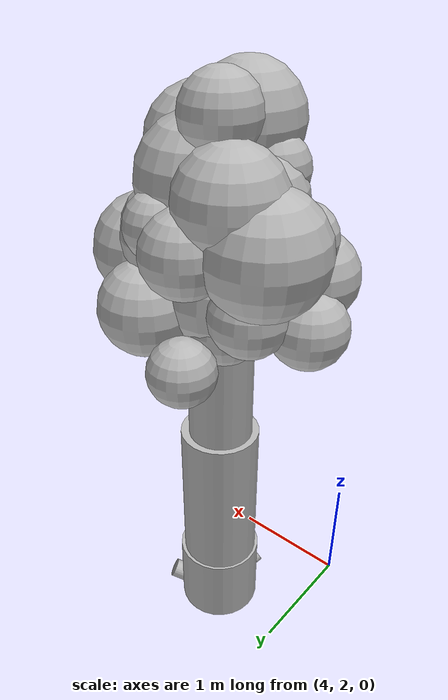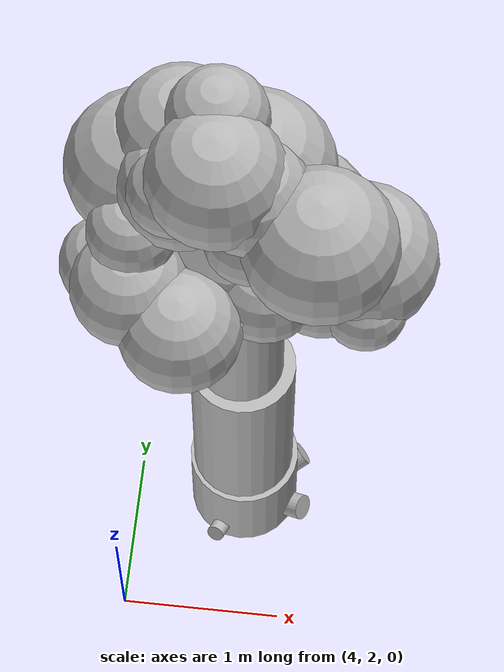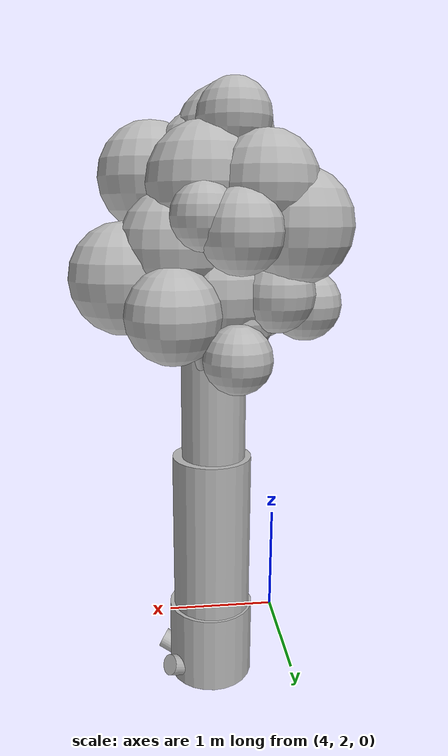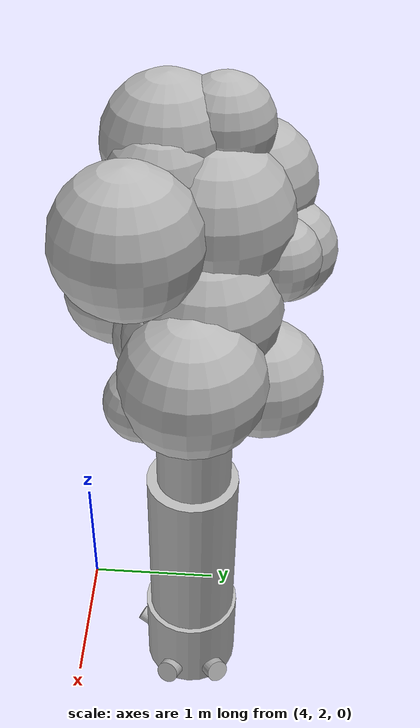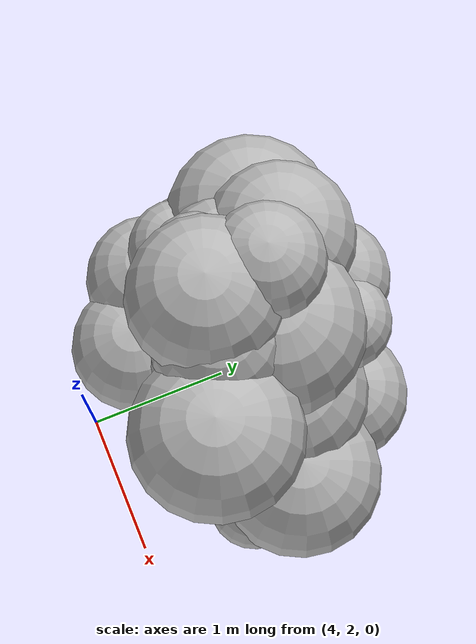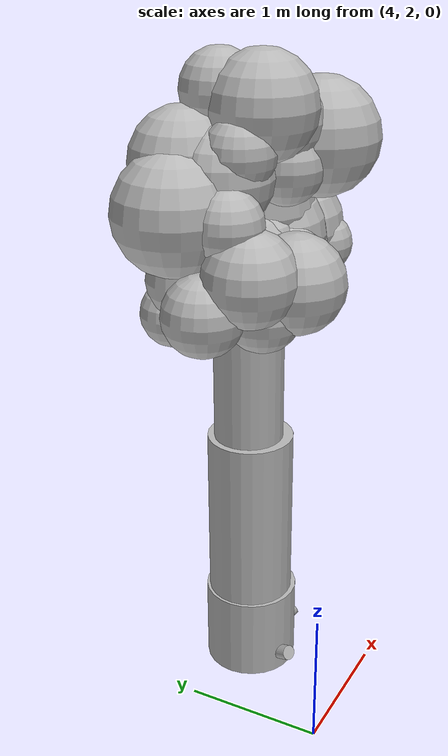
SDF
<sdf version="1.6">
 <world name="default">
  <model name="tree_9">
   <static>true</static>
   <pose>4.6950 2.8680 0 0 0 0</pose>
   <link name="trunk">
    <pose>0 0 1.5000 0 0 0</pose>
    <collision name="trunk_c">
     <geometry><cylinder><radius>0.3500</radius><length>3.0000</length></cylinder></geometry>
    </collision>
   </link>
   <link name="trunk_v0">
    <pose>-0.0012 0.0007 0.3100 0 0 0</pose>
    <visual name="trunk_v0_v">
     <geometry><cylinder><radius>0.3448</radius><length>0.6448</length></cylinder></geometry>
     <material>
      <script>
       <uri>model://bushfire/materials/scripts</uri>
       <uri>model://bushfire/materials/textures</uri>
       <name>Bushfire/CharBark</name>
      </script>
     </material>
    </visual>
   </link>
   <link name="trunk_v1">
    <pose>-0.0084 0.0048 1.2700 0 0 0</pose>
    <visual name="trunk_v1_v">
     <geometry><cylinder><radius>0.3150</radius><length>1.3520</length></cylinder></geometry>
     <material>
      <script>
       <uri>model://bushfire/materials/scripts</uri>
       <uri>model://bushfire/materials/textures</uri>
       <name>Bushfire/BarkStringy</name>
      </script>
     </material>
    </visual>
   </link>
   <link name="trunk_v2">
    <pose>-0.0211 0.0121 2.4600 0 0 0</pose>
    <visual name="trunk_v2_v">
     <geometry><cylinder><radius>0.2520</radius><length>1.1232</length></cylinder></geometry>
     <material>
      <script>
       <uri>model://bushfire/materials/scripts</uri>
       <uri>model://bushfire/materials/textures</uri>
       <name>Bushfire/BarkStringy</name>
      </script>
     </material>
    </visual>
   </link>
   <link name="root0">
    <pose>-0.0834 -0.2250 0.09 0 1.150 4.357</pose>
    <visual name="root0_v">
     <geometry><cylinder><radius>0.0559</radius><length>0.4200</length></cylinder></geometry>
     <material>
      <script>
       <uri>model://bushfire/materials/scripts</uri>
       <uri>model://bushfire/materials/textures</uri>
       <name>Bushfire/CharBark</name>
      </script>
     </material>
    </visual>
   </link>
   <link name="root1">
    <pose>0.2231 -0.0884 0.09 0 1.150 5.906</pose>
    <visual name="root1_v">
     <geometry><cylinder><radius>0.0820</radius><length>0.4200</length></cylinder></geometry>
     <material>
      <script>
       <uri>model://bushfire/materials/scripts</uri>
       <uri>model://bushfire/materials/textures</uri>
       <name>Bushfire/CharBark</name>
      </script>
     </material>
    </visual>
   </link>
   <link name="root2">
    <pose>0.2034 0.1274 0.09 0 1.150 0.560</pose>
    <visual name="root2_v">
     <geometry><cylinder><radius>0.0820</radius><length>0.4200</length></cylinder></geometry>
     <material>
      <script>
       <uri>model://bushfire/materials/scripts</uri>
       <uri>model://bushfire/materials/textures</uri>
       <name>Bushfire/CharBark</name>
      </script>
     </material>
    </visual>
   </link>
   <link name="branch0">
    <pose>-0.1534 0.1899 3.2244 0 0.5458 2.2503</pose>
    <visual name="branch0_v">
     <geometry><cylinder><radius>0.0531</radius><length>0.9404</length></cylinder></geometry>
     <material>
      <script>
       <uri>model://bushfire/materials/scripts</uri>
       <uri>model://bushfire/materials/textures</uri>
       <name>Bushfire/BarkStringy</name>
      </script>
     </material>
    </visual>
   </link>
   <link name="branch1">
    <pose>-0.1738 -0.0894 3.0199 0 0.7760 3.6165</pose>
    <visual name="branch1_v">
     <geometry><cylinder><radius>0.0448</radius><length>0.5581</length></cylinder></geometry>
     <material>
      <script>
       <uri>model://bushfire/materials/scripts</uri>
       <uri>model://bushfire/materials/textures</uri>
       <name>Bushfire/BarkStringy</name>
      </script>
     </material>
    </visual>
   </link>
   <link name="branch2">
    <pose>0.0083 -0.2091 3.0139 0 0.5542 4.7521</pose>
    <visual name="branch2_v">
     <geometry><cylinder><radius>0.0322</radius><length>0.7953</length></cylinder></geometry>
     <material>
      <script>
       <uri>model://bushfire/materials/scripts</uri>
       <uri>model://bushfire/materials/textures</uri>
       <name>Bushfire/BarkStringy</name>
      </script>
     </material>
    </visual>
   </link>
   <link name="branch3">
    <pose>0.2138 -0.0881 2.9920 0 0.9649 5.8922</pose>
    <visual name="branch3_v">
     <geometry><cylinder><radius>0.0517</radius><length>0.5627</length></cylinder></geometry>
     <material>
      <script>
       <uri>model://bushfire/materials/scripts</uri>
       <uri>model://bushfire/materials/textures</uri>
       <name>Bushfire/BarkStringy</name>
      </script>
     </material>
    </visual>
   </link>
   <link name="branch4">
    <pose>0.0622 0.1477 2.6421 0 0.6059 7.4554</pose>
    <visual name="branch4_v">
     <geometry><cylinder><radius>0.0472</radius><length>0.5628</length></cylinder></geometry>
     <material>
      <script>
       <uri>model://bushfire/materials/scripts</uri>
       <uri>model://bushfire/materials/textures</uri>
       <name>Bushfire/BarkStringy</name>
      </script>
     </material>
    </visual>
   </link>
   <link name="foliage0">
    <pose>-0.5615 0.2565 3.7154 0 0 0</pose>
    <visual name="foliage0_v">
     <geometry><sphere><radius>0.4169</radius></sphere></geometry>
     <material>
      <script>
       <uri>model://bushfire/materials/scripts</uri>
       <uri>model://bushfire/materials/textures</uri>
       <name>Bushfire/Foliage1</name>
      </script>
     </material>
    </visual>
   </link>
   <link name="foliage1">
    <pose>-0.4261 -0.2986 3.0949 0 0 0</pose>
    <visual name="foliage1_v">
     <geometry><sphere><radius>0.2620</radius></sphere></geometry>
     <material>
      <script>
       <uri>model://bushfire/materials/scripts</uri>
       <uri>model://bushfire/materials/textures</uri>
       <name>Bushfire/Foliage0</name>
      </script>
     </material>
    </visual>
   </link>
   <link name="foliage2">
    <pose>0.0675 -0.2150 3.9274 0 0 0</pose>
    <visual name="foliage2_v">
     <geometry><sphere><radius>0.2591</radius></sphere></geometry>
     <material>
      <script>
       <uri>model://bushfire/materials/scripts</uri>
       <uri>model://bushfire/materials/textures</uri>
       <name>Bushfire/Foliage1</name>
      </script>
     </material>
    </visual>
   </link>
   <link name="foliage3">
    <pose>0.6735 -0.2152 3.2364 0 0 0</pose>
    <visual name="foliage3_v">
     <geometry><sphere><radius>0.2250</radius></sphere></geometry>
     <material>
      <script>
       <uri>model://bushfire/materials/scripts</uri>
       <uri>model://bushfire/materials/textures</uri>
       <name>Bushfire/Foliage1</name>
      </script>
     </material>
    </visual>
   </link>
   <link name="foliage4">
    <pose>0.2852 0.1056 3.4270 0 0 0</pose>
    <visual name="foliage4_v">
     <geometry><sphere><radius>0.2345</radius></sphere></geometry>
     <material>
      <script>
       <uri>model://bushfire/materials/scripts</uri>
       <uri>model://bushfire/materials/textures</uri>
       <name>Bushfire/Foliage1</name>
      </script>
     </material>
    </visual>
   </link>
   <link name="foliage5">
    <pose>-0.2077 0.3695 3.8158 0 0 0</pose>
    <visual name="foliage5_v">
     <geometry><sphere><radius>0.1798</radius></sphere></geometry>
     <material>
      <script>
       <uri>model://bushfire/materials/scripts</uri>
       <uri>model://bushfire/materials/textures</uri>
       <name>Bushfire/Foliage0</name>
      </script>
     </material>
    </visual>
   </link>
   <link name="foliage6">
    <pose>-0.3211 0.0485 3.9168 0 0 0</pose>
    <visual name="foliage6_v">
     <geometry><sphere><radius>0.3449</radius></sphere></geometry>
     <material>
      <script>
       <uri>model://bushfire/materials/scripts</uri>
       <uri>model://bushfire/materials/textures</uri>
       <name>Bushfire/Foliage2</name>
      </script>
     </material>
    </visual>
   </link>
   <link name="foliage7">
    <pose>0.1325 -0.1697 3.2596 0 0 0</pose>
    <visual name="foliage7_v">
     <geometry><sphere><radius>0.2860</radius></sphere></geometry>
     <material>
      <script>
       <uri>model://bushfire/materials/scripts</uri>
       <uri>model://bushfire/materials/textures</uri>
       <name>Bushfire/Foliage2</name>
      </script>
     </material>
    </visual>
   </link>
   <link name="foliage8">
    <pose>0.4162 -0.3054 4.0621 0 0 0</pose>
    <visual name="foliage8_v">
     <geometry><sphere><radius>0.4050</radius></sphere></geometry>
     <material>
      <script>
       <uri>model://bushfire/materials/scripts</uri>
       <uri>model://bushfire/materials/textures</uri>
       <name>Bushfire/Foliage1</name>
      </script>
     </material>
    </visual>
   </link>
   <link name="foliage9">
    <pose>0.0927 0.4667 3.7855 0 0 0</pose>
    <visual name="foliage9_v">
     <geometry><sphere><radius>0.2331</radius></sphere></geometry>
     <material>
      <script>
       <uri>model://bushfire/materials/scripts</uri>
       <uri>model://bushfire/materials/textures</uri>
       <name>Bushfire/Foliage0</name>
      </script>
     </material>
    </visual>
   </link>
   <link name="foliage10">
    <pose>-0.3463 0.3129 3.9907 0 0 0</pose>
    <visual name="foliage10_v">
     <geometry><sphere><radius>0.3620</radius></sphere></geometry>
     <material>
      <script>
       <uri>model://bushfire/materials/scripts</uri>
       <uri>model://bushfire/materials/textures</uri>
       <name>Bushfire/Foliage0</name>
      </script>
     </material>
    </visual>
   </link>
   <link name="foliage11">
    <pose>-0.4487 0.2415 3.2471 0 0 0</pose>
    <visual name="foliage11_v">
     <geometry><sphere><radius>0.2818</radius></sphere></geometry>
     <material>
      <script>
       <uri>model://bushfire/materials/scripts</uri>
       <uri>model://bushfire/materials/textures</uri>
       <name>Bushfire/Foliage0</name>
      </script>
     </material>
    </visual>
   </link>
   <link name="foliage12">
    <pose>0.2656 0.1006 3.5744 0 0 0</pose>
    <visual name="foliage12_v">
     <geometry><sphere><radius>0.4101</radius></sphere></geometry>
     <material>
      <script>
       <uri>model://bushfire/materials/scripts</uri>
       <uri>model://bushfire/materials/textures</uri>
       <name>Bushfire/Foliage0</name>
      </script>
     </material>
    </visual>
   </link>
   <link name="foliage13">
    <pose>0.3399 0.2230 3.1561 0 0 0</pose>
    <visual name="foliage13_v">
     <geometry><sphere><radius>0.2230</radius></sphere></geometry>
     <material>
      <script>
       <uri>model://bushfire/materials/scripts</uri>
       <uri>model://bushfire/materials/textures</uri>
       <name>Bushfire/Foliage2</name>
      </script>
     </material>
    </visual>
   </link>
   <link name="foliage14">
    <pose>0.3040 0.4203 3.1228 0 0 0</pose>
    <visual name="foliage14_v">
     <geometry><sphere><radius>0.3435</radius></sphere></geometry>
     <material>
      <script>
       <uri>model://bushfire/materials/scripts</uri>
       <uri>model://bushfire/materials/textures</uri>
       <name>Bushfire/Foliage2</name>
      </script>
     </material>
    </visual>
   </link>
   <link name="foliage15">
    <pose>-0.2879 0.4637 3.6822 0 0 0</pose>
    <visual name="foliage15_v">
     <geometry><sphere><radius>0.1923</radius></sphere></geometry>
     <material>
      <script>
       <uri>model://bushfire/materials/scripts</uri>
       <uri>model://bushfire/materials/textures</uri>
       <name>Bushfire/Foliage1</name>
      </script>
     </material>
    </visual>
   </link>
   <link name="foliage16">
    <pose>-0.5729 -0.2843 3.3694 0 0 0</pose>
    <visual name="foliage16_v">
     <geometry><sphere><radius>0.3217</radius></sphere></geometry>
     <material>
      <script>
       <uri>model://bushfire/materials/scripts</uri>
       <uri>model://bushfire/materials/textures</uri>
       <name>Bushfire/Foliage2</name>
      </script>
     </material>
    </visual>
   </link>
   <link name="foliage17">
    <pose>0.0592 -0.1539 4.2159 0 0 0</pose>
    <visual name="foliage17_v">
     <geometry><sphere><radius>0.3076</radius></sphere></geometry>
     <material>
      <script>
       <uri>model://bushfire/materials/scripts</uri>
       <uri>model://bushfire/materials/textures</uri>
       <name>Bushfire/Foliage0</name>
      </script>
     </material>
    </visual>
   </link>
   <link name="foliage18">
    <pose>0.0524 0.1296 4.0024 0 0 0</pose>
    <visual name="foliage18_v">
     <geometry><sphere><radius>0.4213</radius></sphere></geometry>
     <material>
      <script>
       <uri>model://bushfire/materials/scripts</uri>
       <uri>model://bushfire/materials/textures</uri>
       <name>Bushfire/Foliage2</name>
      </script>
     </material>
    </visual>
   </link>
   <link name="foliage19">
    <pose>-0.1360 0.1101 3.0455 0 0 0</pose>
    <visual name="foliage19_v">
     <geometry><sphere><radius>0.3182</radius></sphere></geometry>
     <material>
      <script>
       <uri>model://bushfire/materials/scripts</uri>
       <uri>model://bushfire/materials/textures</uri>
       <name>Bushfire/Foliage2</name>
      </script>
     </material>
    </visual>
   </link>
   <link name="foliage20">
    <pose>-0.1525 0.5108 3.6885 0 0 0</pose>
    <visual name="foliage20_v">
     <geometry><sphere><radius>0.2920</radius></sphere></geometry>
     <material>
      <script>
       <uri>model://bushfire/materials/scripts</uri>
       <uri>model://bushfire/materials/textures</uri>
       <name>Bushfire/Foliage1</name>
      </script>
     </material>
    </visual>
   </link>
   <link name="foliage21">
    <pose>-0.7296 -0.0302 3.1341 0 0 0</pose>
    <visual name="foliage21_v">
     <geometry><sphere><radius>0.2756</radius></sphere></geometry>
     <material>
      <script>
       <uri>model://bushfire/materials/scripts</uri>
       <uri>model://bushfire/materials/textures</uri>
       <name>Bushfire/Foliage0</name>
      </script>
     </material>
    </visual>
   </link>
   <link name="foliage22">
    <pose>-0.0610 0.0641 3.2377 0 0 0</pose>
    <visual name="foliage22_v">
     <geometry><sphere><radius>0.4177</radius></sphere></geometry>
     <material>
      <script>
       <uri>model://bushfire/materials/scripts</uri>
       <uri>model://bushfire/materials/textures</uri>
       <name>Bushfire/Foliage1</name>
      </script>
     </material>
    </visual>
   </link>
   <link name="foliage23">
    <pose>0.4339 -0.0752 3.2057 0 0 0</pose>
    <visual name="foliage23_v">
     <geometry><sphere><radius>0.2920</radius></sphere></geometry>
     <material>
      <script>
       <uri>model://bushfire/materials/scripts</uri>
       <uri>model://bushfire/materials/textures</uri>
       <name>Bushfire/Foliage0</name>
      </script>
     </material>
    </visual>
   </link>
   <link name="foliage24">
    <pose>0.3800 0.0291 3.3291 0 0 0</pose>
    <visual name="foliage24_v">
     <geometry><sphere><radius>0.3890</radius></sphere></geometry>
     <material>
      <script>
       <uri>model://bushfire/materials/scripts</uri>
       <uri>model://bushfire/materials/textures</uri>
       <name>Bushfire/Foliage2</name>
      </script>
     </material>
    </visual>
   </link>
   <link name="foliage25">
    <pose>-0.1418 0.1555 4.4232 0 0 0</pose>
    <visual name="foliage25_v">
     <geometry><sphere><radius>0.2645</radius></sphere></geometry>
     <material>
      <script>
       <uri>model://bushfire/materials/scripts</uri>
       <uri>model://bushfire/materials/textures</uri>
       <name>Bushfire/Foliage2</name>
      </script>
     </material>
    </visual>
   </link>
   <link name="foliage26">
    <pose>-0.3454 -0.0939 4.0854 0 0 0</pose>
    <visual name="foliage26_v">
     <geometry><sphere><radius>0.2391</radius></sphere></geometry>
     <material>
      <script>
       <uri>model://bushfire/materials/scripts</uri>
       <uri>model://bushfire/materials/textures</uri>
       <name>Bushfire/Foliage1</name>
      </script>
     </material>
    </visual>
   </link>
   <link name="foliage27">
    <pose>0.3052 0.0176 3.3843 0 0 0</pose>
    <visual name="foliage27_v">
     <geometry><sphere><radius>0.3976</radius></sphere></geometry>
     <material>
      <script>
       <uri>model://bushfire/materials/scripts</uri>
       <uri>model://bushfire/materials/textures</uri>
       <name>Bushfire/Foliage2</name>
      </script>
     </material>
    </visual>
   </link>
   <link name="foliage28">
    <pose>0.6327 0.0371 3.3446 0 0 0</pose>
    <visual name="foliage28_v">
     <geometry><sphere><radius>0.4107</radius></sphere></geometry>
     <material>
      <script>
       <uri>model://bushfire/materials/scripts</uri>
       <uri>model://bushfire/materials/textures</uri>
       <name>Bushfire/Foliage2</name>
      </script>
     </material>
    </visual>
   </link>
   <link name="foliage29">
    <pose>-0.1294 0.5499 2.8362 0 0 0</pose>
    <visual name="foliage29_v">
     <geometry><sphere><radius>0.2461</radius></sphere></geometry>
     <material>
      <script>
       <uri>model://bushfire/materials/scripts</uri>
       <uri>model://bushfire/materials/textures</uri>
       <name>Bushfire/Foliage2</name>
      </script>
     </material>
    </visual>
   </link>
   <link name="foliage30">
    <pose>-0.1168 -0.1365 4.3348 0 0 0</pose>
    <visual name="foliage30_v">
     <geometry><sphere><radius>0.3630</radius></sphere></geometry>
     <material>
      <script>
       <uri>model://bushfire/materials/scripts</uri>
       <uri>model://bushfire/materials/textures</uri>
       <name>Bushfire/Foliage2</name>
      </script>
     </material>
    </visual>
   </link>
   <link name="foliage31">
    <pose>-0.5671 -0.1197 3.6877 0 0 0</pose>
    <visual name="foliage31_v">
     <geometry><sphere><radius>0.2423</radius></sphere></geometry>
     <material>
      <script>
       <uri>model://bushfire/materials/scripts</uri>
       <uri>model://bushfire/materials/textures</uri>
       <name>Bushfire/Foliage2</name>
      </script>
     </material>
    </visual>
   </link>
   <link name="foliage32">
    <pose>-0.2881 -0.4651 3.2774 0 0 0</pose>
    <visual name="foliage32_v">
     <geometry><sphere><radius>0.3361</radius></sphere></geometry>
     <material>
      <script>
       <uri>model://bushfire/materials/scripts</uri>
       <uri>model://bushfire/materials/textures</uri>
       <name>Bushfire/Foliage0</name>
      </script>
     </material>
    </visual>
   </link>
   <link name="foliage33">
    <pose>0.3474 -0.2438 3.8602 0 0 0</pose>
    <visual name="foliage33_v">
     <geometry><sphere><radius>0.1956</radius></sphere></geometry>
     <material>
      <script>
       <uri>model://bushfire/materials/scripts</uri>
       <uri>model://bushfire/materials/textures</uri>
       <name>Bushfire/Foliage0</name>
      </script>
     </material>
    </visual>
   </link>
   <link name="foliage34">
    <pose>0.0344 -0.0661 3.4046 0 0 0</pose>
    <visual name="foliage34_v">
     <geometry><sphere><radius>0.2235</radius></sphere></geometry>
     <material>
      <script>
       <uri>model://bushfire/materials/scripts</uri>
       <uri>model://bushfire/materials/textures</uri>
       <name>Bushfire/Foliage0</name>
      </script>
     </material>
    </visual>
   </link>
  </model>
 </world>
</sdf>
